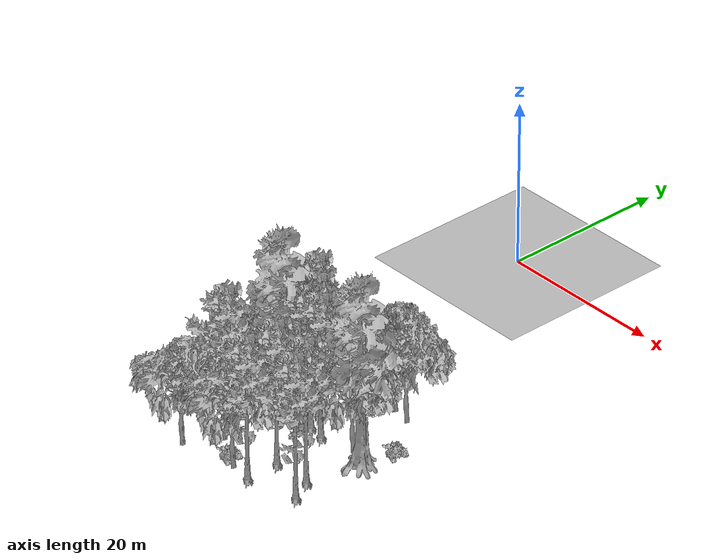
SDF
<sdf version="1.7">
 <world name="default">
  <model name="ground_plane">
   <static>1</static>
   <link name="link">
    <collision name="collision">
     <geometry><plane><normal>0 0 1</normal><size>100 100</size></plane></geometry>
     <surface><contact><ode><min_depth>0.01</min_depth><max_vel>0</max_vel></ode></contact></surface>
    </collision>
    <visual name="grass">
     <cast_shadows>0</cast_shadows>
     <geometry>
      <mesh>
       <scale>0.41000000000000003 0.41000000000000003 0.1</scale>
       <uri>file://grass_plane/meshes/grass_plane.dae</uri>
      </mesh>
     </geometry>
    </visual>
   </link>
  </model>
  <model name="Tree 18">
   <static>1</static>
   <pose>15.028659522144899 -29.757518925209514 0 1.57079 -0 0</pose>
   <link name="link">
    <collision name="collision">
     <geometry><mesh><scale>5 5 5</scale><uri>model://tree_2/meshes/tree_2.obj</uri></mesh></geometry>
    </collision>
    <visual name="visual">
     <geometry><mesh><scale>5 5 5</scale><uri>model://tree_2/meshes/tree_2.obj</uri></mesh></geometry>
    </visual>
   </link>
  </model>
  <model name="Tree 30">
   <static>1</static>
   <pose>12.041843890324635 -48.820525487982906 0 1.57079 -0 0</pose>
   <link name="link">
    <collision name="collision">
     <geometry><mesh><scale>5 5 5</scale><uri>model://tree_9/meshes/tree_9.obj</uri></mesh></geometry>
    </collision>
    <visual name="visual">
     <geometry><mesh><scale>5 5 5</scale><uri>model://tree_9/meshes/tree_9.obj</uri></mesh></geometry>
    </visual>
   </link>
  </model>
  <model name="Tree 57">
   <static>1</static>
   <pose>11.9788699841692 -44.803621683157516 0 1.57079 -0 0</pose>
   <link name="link">
    <collision name="collision">
     <geometry><mesh><scale>5 5 5</scale><uri>model://tree_9/meshes/tree_9.obj</uri></mesh></geometry>
    </collision>
    <visual name="visual">
     <geometry><mesh><scale>5 5 5</scale><uri>model://tree_9/meshes/tree_9.obj</uri></mesh></geometry>
    </visual>
   </link>
  </model>
  <model name="Tree 61">
   <static>1</static>
   <pose>9.345196980787627 -48.581726508820935 0 1.57079 -0 0</pose>
   <link name="link">
    <collision name="collision">
     <geometry><mesh><scale>5 5 5</scale><uri>model://tree_2/meshes/tree_2.obj</uri></mesh></geometry>
    </collision>
    <visual name="visual">
     <geometry><mesh><scale>5 5 5</scale><uri>model://tree_2/meshes/tree_2.obj</uri></mesh></geometry>
    </visual>
   </link>
  </model>
  <model name="Tree 104">
   <static>1</static>
   <pose>15.454983715011693 -37.55387566364953 0 1.57079 -0 0</pose>
   <link name="link">
    <collision name="collision">
     <geometry><mesh><scale>5 5 5</scale><uri>model://tree_2/meshes/tree_2.obj</uri></mesh></geometry>
    </collision>
    <visual name="visual">
     <geometry><mesh><scale>5 5 5</scale><uri>model://tree_2/meshes/tree_2.obj</uri></mesh></geometry>
    </visual>
   </link>
  </model>
  <model name="Tree 134">
   <static>1</static>
   <pose>8.558510559018586 -38.46568026360939 0 1.57079 -0 0</pose>
   <link name="link">
    <collision name="collision">
     <geometry><mesh><scale>5 5 5</scale><uri>model://tree_9/meshes/tree_9.obj</uri></mesh></geometry>
    </collision>
    <visual name="visual">
     <geometry><mesh><scale>5 5 5</scale><uri>model://tree_9/meshes/tree_9.obj</uri></mesh></geometry>
    </visual>
   </link>
  </model>
  <model name="Tree 151">
   <static>1</static>
   <pose>2.621911795145998 -49.80109586511059 0 1.57079 -0 0</pose>
   <link name="link">
    <collision name="collision">
     <geometry><mesh><scale>5 5 5</scale><uri>model://tree_2/meshes/tree_2.obj</uri></mesh></geometry>
    </collision>
    <visual name="visual">
     <geometry><mesh><scale>5 5 5</scale><uri>model://tree_2/meshes/tree_2.obj</uri></mesh></geometry>
    </visual>
   </link>
  </model>
  <model name="Tree 172">
   <static>1</static>
   <pose>16.532457097692983 -44.7354524508033 0 1.57079 -0 0</pose>
   <link name="link">
    <collision name="collision">
     <geometry><mesh><scale>5 5 5</scale><uri>model://tree_9/meshes/tree_9.obj</uri></mesh></geometry>
    </collision>
    <visual name="visual">
     <geometry><mesh><scale>5 5 5</scale><uri>model://tree_9/meshes/tree_9.obj</uri></mesh></geometry>
    </visual>
   </link>
  </model>
  <model name="Tree 201">
   <static>1</static>
   <pose>3.6709668561519564 -44.476830825590774 0 1.57079 -0 0</pose>
   <link name="link">
    <collision name="collision">
     <geometry><mesh><scale>5 5 5</scale><uri>model://tree_9/meshes/tree_9.obj</uri></mesh></geometry>
    </collision>
    <visual name="visual">
     <geometry><mesh><scale>5 5 5</scale><uri>model://tree_9/meshes/tree_9.obj</uri></mesh></geometry>
    </visual>
   </link>
  </model>
  <model name="Tree 277">
   <static>1</static>
   <pose>7.061776809887412 -36.76038164964864 0 1.57079 -0 0</pose>
   <link name="link">
    <collision name="collision">
     <geometry><mesh><scale>5 5 5</scale><uri>model://tree_2/meshes/tree_2.obj</uri></mesh></geometry>
    </collision>
    <visual name="visual">
     <geometry><mesh><scale>5 5 5</scale><uri>model://tree_2/meshes/tree_2.obj</uri></mesh></geometry>
    </visual>
   </link>
  </model>
  <model name="Tree 295">
   <static>1</static>
   <pose>4.814536733369771 -45.944035604019184 0 1.57079 -0 0</pose>
   <link name="link">
    <collision name="collision">
     <geometry><mesh><scale>5 5 5</scale><uri>model://tree_2/meshes/tree_2.obj</uri></mesh></geometry>
    </collision>
    <visual name="visual">
     <geometry><mesh><scale>5 5 5</scale><uri>model://tree_2/meshes/tree_2.obj</uri></mesh></geometry>
    </visual>
   </link>
  </model>
  <model name="Tree 309">
   <static>1</static>
   <pose>5.874681967883824 -38.68437509318292 0 1.57079 -0 0</pose>
   <link name="link">
    <collision name="collision">
     <geometry><mesh><scale>5 5 5</scale><uri>model://tree_4/meshes/tree_4.obj</uri></mesh></geometry>
    </collision>
    <visual name="visual">
     <geometry><mesh><scale>5 5 5</scale><uri>model://tree_4/meshes/tree_4.obj</uri></mesh></geometry>
    </visual>
   </link>
  </model>
  <model name="Tree 314">
   <static>1</static>
   <pose>18.018402317230823 -38.571996026288616 0 1.57079 -0 0</pose>
   <link name="link">
    <collision name="collision">
     <geometry><mesh><scale>5 5 5</scale><uri>model://tree_4/meshes/tree_4.obj</uri></mesh></geometry>
    </collision>
    <visual name="visual">
     <geometry><mesh><scale>5 5 5</scale><uri>model://tree_4/meshes/tree_4.obj</uri></mesh></geometry>
    </visual>
   </link>
  </model>
  <model name="Tree 379">
   <static>1</static>
   <pose>5.232499011304434 -33.460969041019254 0 1.57079 -0 0</pose>
   <link name="link">
    <collision name="collision">
     <geometry><mesh><scale>5 5 5</scale><uri>model://tree_9/meshes/tree_9.obj</uri></mesh></geometry>
    </collision>
    <visual name="visual">
     <geometry><mesh><scale>5 5 5</scale><uri>model://tree_9/meshes/tree_9.obj</uri></mesh></geometry>
    </visual>
   </link>
  </model>
  <model name="Tree 438">
   <static>1</static>
   <pose>9.278628642492563 -37.849758699846525 0 1.57079 -0 0</pose>
   <link name="link">
    <collision name="collision">
     <geometry><mesh><scale>5 5 5</scale><uri>model://tree_9/meshes/tree_9.obj</uri></mesh></geometry>
    </collision>
    <visual name="visual">
     <geometry><mesh><scale>5 5 5</scale><uri>model://tree_9/meshes/tree_9.obj</uri></mesh></geometry>
    </visual>
   </link>
  </model>
  <model name="Tree 449">
   <static>1</static>
   <pose>17.930954573375104 -47.361292299176036 0 1.57079 -0 0</pose>
   <link name="link">
    <collision name="collision">
     <geometry><mesh><scale>5 5 5</scale><uri>model://tree_9/meshes/tree_9.obj</uri></mesh></geometry>
    </collision>
    <visual name="visual">
     <geometry><mesh><scale>5 5 5</scale><uri>model://tree_9/meshes/tree_9.obj</uri></mesh></geometry>
    </visual>
   </link>
  </model>
  <model name="Tree 452">
   <static>1</static>
   <pose>8.2247574698564 -35.844773241791806 0 1.57079 -0 0</pose>
   <link name="link">
    <collision name="collision">
     <geometry><mesh><scale>5 5 5</scale><uri>model://tree_9/meshes/tree_9.obj</uri></mesh></geometry>
    </collision>
    <visual name="visual">
     <geometry><mesh><scale>5 5 5</scale><uri>model://tree_9/meshes/tree_9.obj</uri></mesh></geometry>
    </visual>
   </link>
  </model>
  <model name="Tree 463">
   <static>1</static>
   <pose>11.303474444316933 -38.22956041962551 0 1.57079 -0 0</pose>
   <link name="link">
    <collision name="collision">
     <geometry><mesh><scale>5 5 5</scale><uri>model://tree_9/meshes/tree_9.obj</uri></mesh></geometry>
    </collision>
    <visual name="visual">
     <geometry><mesh><scale>5 5 5</scale><uri>model://tree_9/meshes/tree_9.obj</uri></mesh></geometry>
    </visual>
   </link>
  </model>
  <model name="Tree 470">
   <static>1</static>
   <pose>12.45539599912481 -29.099118237569677 0 1.57079 -0 0</pose>
   <link name="link">
    <collision name="collision">
     <geometry><mesh><scale>5 5 5</scale><uri>model://tree_2/meshes/tree_2.obj</uri></mesh></geometry>
    </collision>
    <visual name="visual">
     <geometry><mesh><scale>5 5 5</scale><uri>model://tree_2/meshes/tree_2.obj</uri></mesh></geometry>
    </visual>
   </link>
  </model>
  <model name="Tree 473">
   <static>1</static>
   <pose>12.70240036633271 -29.28681009492433 0 1.57079 -0 0</pose>
   <link name="link">
    <collision name="collision">
     <geometry><mesh><scale>5 5 5</scale><uri>model://tree_2/meshes/tree_2.obj</uri></mesh></geometry>
    </collision>
    <visual name="visual">
     <geometry><mesh><scale>5 5 5</scale><uri>model://tree_2/meshes/tree_2.obj</uri></mesh></geometry>
    </visual>
   </link>
  </model>
  <model name="Tree 484">
   <static>1</static>
   <pose>7.176611585179657 -36.22061598082578 0 1.57079 -0 0</pose>
   <link name="link">
    <collision name="collision">
     <geometry><mesh><scale>5 5 5</scale><uri>model://tree_2/meshes/tree_2.obj</uri></mesh></geometry>
    </collision>
    <visual name="visual">
     <geometry><mesh><scale>5 5 5</scale><uri>model://tree_2/meshes/tree_2.obj</uri></mesh></geometry>
    </visual>
   </link>
  </model>
  <model name="Bush 11">
   <static>1</static>
   <pose>18.591513446397897 -34.47367554201725 0 1.57079 -0 0</pose>
   <link name="link">
    <collision name="collision">
     <geometry><mesh><scale>2 2 2</scale><uri>model://bush_2/meshes/bush_2.obj</uri></mesh></geometry>
    </collision>
    <visual name="visual">
     <geometry><mesh><scale>5 5 5</scale><uri>model://bush_2/meshes/bush_2.obj</uri></mesh></geometry>
    </visual>
   </link>
  </model>
  <model name="Bush 24">
   <static>1</static>
   <pose>7.544269316789595 -47.55578012545543 0 1.57079 -0 0</pose>
   <link name="link">
    <collision name="collision">
     <geometry><mesh><scale>2 2 2</scale><uri>model://bush_2/meshes/bush_2.obj</uri></mesh></geometry>
    </collision>
    <visual name="visual">
     <geometry><mesh><scale>5 5 5</scale><uri>model://bush_2/meshes/bush_2.obj</uri></mesh></geometry>
    </visual>
   </link>
  </model>
 </world>
</sdf>
